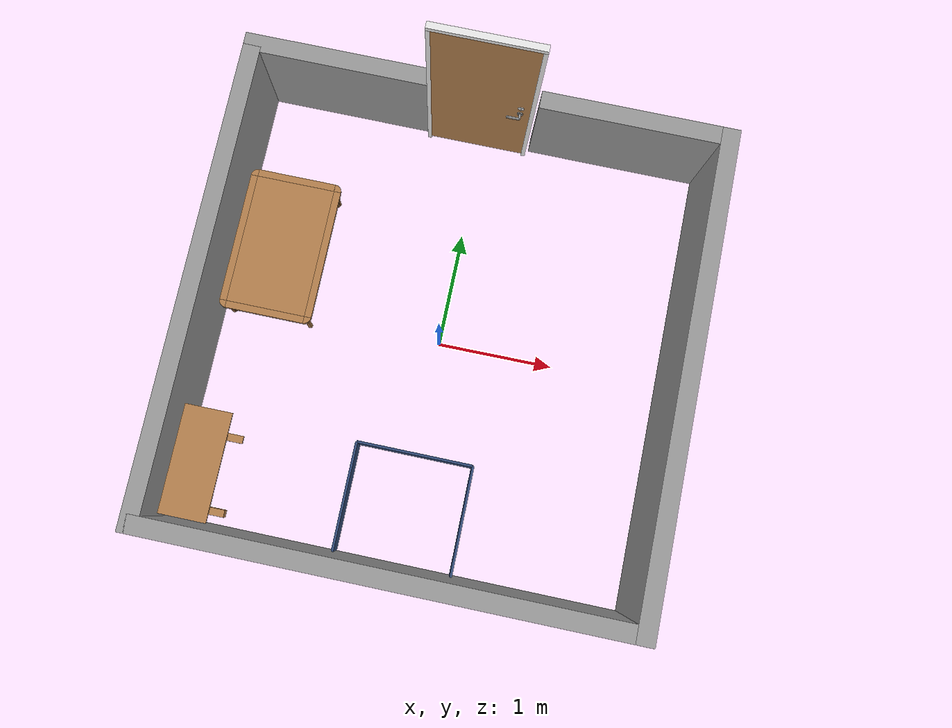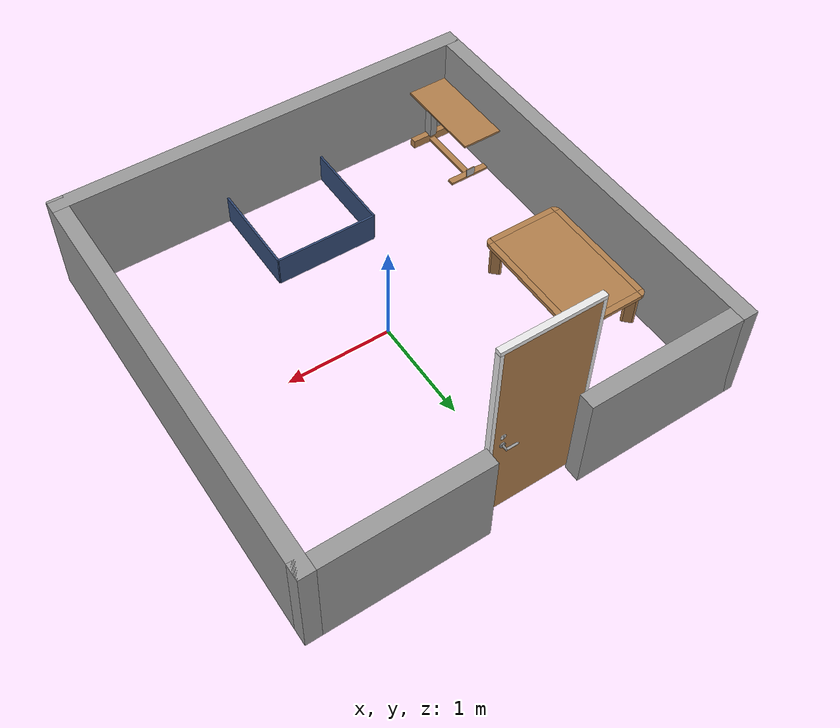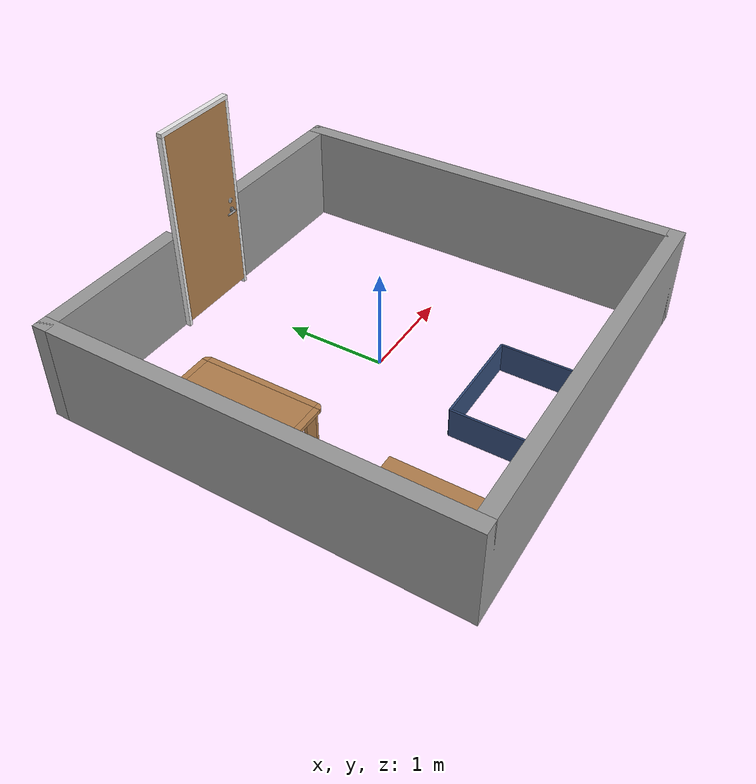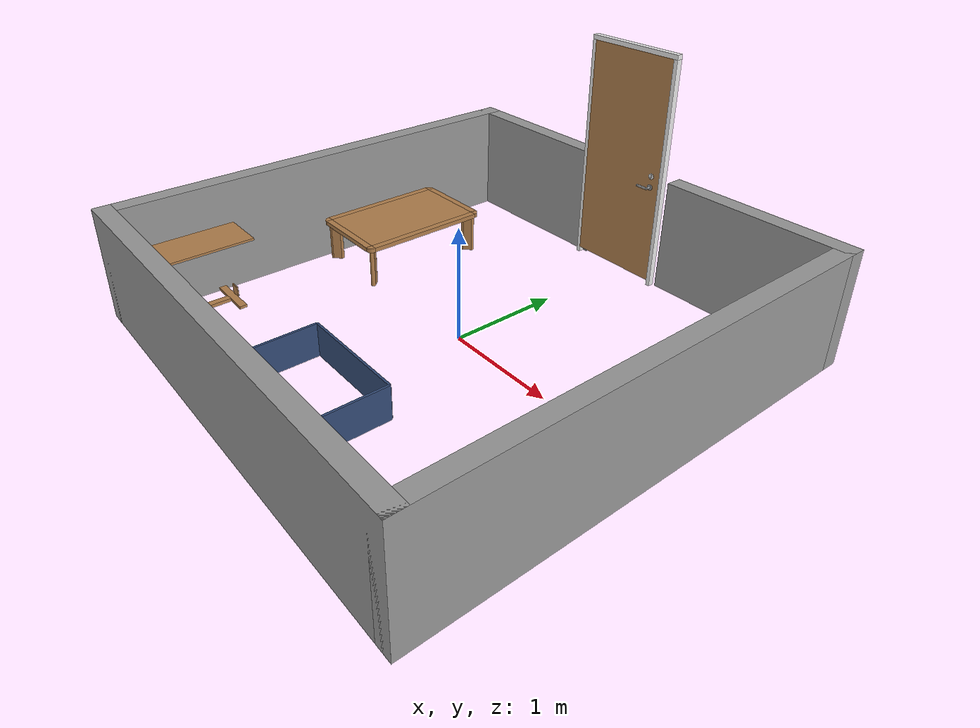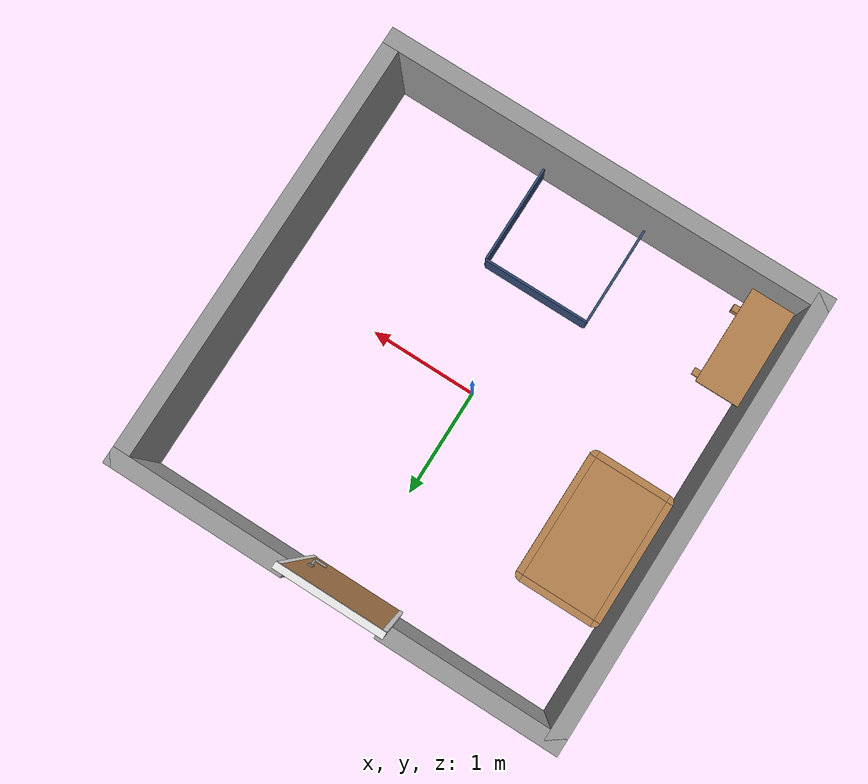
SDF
<sdf version="1.6">
 <world name="default">
  <model name="test_next_object_walls">
   <pose>-3e-06 0 1e-06 0 0.001621 0</pose>
   <link name="Wall_14">
    <collision name="Wall_14_Collision">
     <geometry><box><size>4.15 0.15 1</size></box></geometry>
     <pose>0 0 0.5 0 -0 0</pose>
    </collision>
    <visual name="Wall_14_Visual">
     <pose>0 0 0.5 0 -0 0</pose>
     <geometry><box><size>4.15 0.15 1</size></box></geometry>
     <material>
      <script><uri>file://media/materials/scripts/gazebo.material</uri><name>Gazebo/Grey</name></script>
      <ambient>1 1 1 1</ambient>
     </material>
     <meta><layer>0</layer></meta>
    </visual>
    <pose>-2 0 0 0 -0 -1.5708</pose>
   </link>
   <link name="Wall_16">
    <collision name="Wall_16_Collision">
     <geometry><box><size>4.15 0.15 1</size></box></geometry>
     <pose>0 0 0.5 0 -0 0</pose>
    </collision>
    <visual name="Wall_16_Visual">
     <pose>0 0 0.5 0 -0 0</pose>
     <geometry><box><size>4.15 0.15 1</size></box></geometry>
     <material>
      <script><uri>file://media/materials/scripts/gazebo.material</uri><name>Gazebo/Grey</name></script>
      <ambient>1 1 1 1</ambient>
     </material>
     <meta><layer>0</layer></meta>
    </visual>
    <pose>0 -2 0 0 -0 0</pose>
   </link>
   <link name="Wall_18">
    <collision name="Wall_18_Collision">
     <geometry><box><size>4.15 0.15 1</size></box></geometry>
     <pose>0 0 0.5 0 -0 0</pose>
    </collision>
    <visual name="Wall_18_Visual">
     <pose>0 0 0.5 0 -0 0</pose>
     <geometry><box><size>4.15 0.15 1</size></box></geometry>
     <material>
      <script><uri>file://media/materials/scripts/gazebo.material</uri><name>Gazebo/Grey</name></script>
      <ambient>1 1 1 1</ambient>
     </material>
     <meta><layer>0</layer></meta>
    </visual>
    <pose>2 0 0 0 -0 1.5708</pose>
   </link>
   <link name="Wall_20">
    <collision name="Wall_20_Collision">
     <geometry><box><size>1.65 0.15 1</size></box></geometry>
     <pose>0 0 0.5 0 -0 0</pose>
    </collision>
    <visual name="Wall_20_Visual">
     <pose>0 0 0.5 0 -0 0</pose>
     <geometry><box><size>1.65 0.15 1</size></box></geometry>
     <material>
      <script><uri>file://media/materials/scripts/gazebo.material</uri><name>Gazebo/Grey</name></script>
      <ambient>1 1 1 1</ambient>
     </material>
     <meta><layer>0</layer></meta>
    </visual>
    <pose>-1.25 2 0 0 -0 0</pose>
   </link>
   <link name="Wall_22">
    <collision name="Wall_22_Collision">
     <geometry><box><size>1.65 0.15 1</size></box></geometry>
     <pose>0 0 0.5 0 -0 0</pose>
    </collision>
    <visual name="Wall_22_Visual">
     <pose>0 0 0.5 0 -0 0</pose>
     <geometry><box><size>1.65 0.15 1</size></box></geometry>
     <material>
      <script><uri>file://media/materials/scripts/gazebo.material</uri><name>Gazebo/Grey</name></script>
      <ambient>1 1 1 1</ambient>
     </material>
     <meta><layer>0</layer></meta>
    </visual>
    <pose>1.25 2 0 0 -0 3.14159</pose>
   </link>
   <static>1</static>
  </model>
  <model name="kitchen_lowtable">
   <link name="link">
    <inertial>
     <mass>10</mass>
     <inertia><ixx>1</ixx><ixy>0</ixy><ixz>0</ixz><iyy>1</iyy><iyz>0</iyz><izz>1</izz></inertia>
    </inertial>
    <visual name="center_board">
     <pose>0 0 0.38 0 -0 0</pose>
     <geometry><box><size>0.68 1.13 0.04</size></box></geometry>
     <material>
      <script><uri>model://base_materials/wood/scripts/wood.material</uri><name>base_materials/wood</name></script>
     </material>
    </visual>
    <collision name="collision_center_board">
     <pose>0 0 0.38 0 -0 0</pose>
     <geometry><box><size>0.68 1.13 0.04</size></box></geometry>
    </collision>
    <visual name="front_board">
     <pose>0.37 0 0.38 0 -0 0</pose>
     <geometry><box><size>0.06 1.13 0.04</size></box></geometry>
     <material>
      <script><uri>model://base_materials/wood/scripts/wood.material</uri><name>base_materials/wood</name></script>
     </material>
    </visual>
    <collision name="collision_front_board">
     <pose>0.37 0 0.38 0 -0 0</pose>
     <geometry><box><size>0.06 1.13 0.04</size></box></geometry>
    </collision>
    <visual name="back_board">
     <pose>-0.37 0 0.38 0 -0 0</pose>
     <geometry><box><size>0.06 1.13 0.04</size></box></geometry>
     <material>
      <script><uri>model://base_materials/wood/scripts/wood.material</uri><name>base_materials/wood</name></script>
     </material>
    </visual>
    <collision name="collision_back_board">
     <pose>-0.37 0 0.38 0 -0 0</pose>
     <geometry><box><size>0.06 1.13 0.04</size></box></geometry>
    </collision>
    <visual name="right_board">
     <pose>0 0.595 0.38 0 -0 0</pose>
     <geometry><box><size>0.68 0.06 0.04</size></box></geometry>
     <material>
      <script><uri>model://base_materials/wood/scripts/wood.material</uri><name>base_materials/wood</name></script>
     </material>
    </visual>
    <collision name="collision_right_board">
     <pose>0 0.595 0.38 0 -0 0</pose>
     <geometry><box><size>0.68 0.06 0.04</size></box></geometry>
    </collision>
    <visual name="left_board">
     <pose>0 -0.595 0.38 0 -0 0</pose>
     <geometry><box><size>0.68 0.06 0.04</size></box></geometry>
     <material>
      <script><uri>model://base_materials/wood/scripts/wood.material</uri><name>base_materials/wood</name></script>
     </material>
    </visual>
    <collision name="collision_left_board">
     <pose>0 -0.595 0.38 0 -0 0</pose>
     <geometry><box><size>0.68 0.06 0.04</size></box></geometry>
    </collision>
    <visual name="front_right_corner_board">
     <pose>0.34 0.565 0.38 0 -0 0</pose>
     <geometry><cylinder><radius>0.06</radius><length>0.039</length></cylinder></geometry>
     <material>
      <script><uri>model://base_materials/wood/scripts/wood.material</uri><name>base_materials/wood</name></script>
     </material>
    </visual>
    <collision name="collision_front_right_corner_board">
     <pose>0.34 0.565 0.38 0 -0 0</pose>
     <geometry><cylinder><radius>0.06</radius><length>0.039</length></cylinder></geometry>
    </collision>
    <visual name="front_left_corner_board">
     <pose>0.34 -0.565 0.38 0 -0 0</pose>
     <geometry><cylinder><radius>0.06</radius><length>0.039</length></cylinder></geometry>
     <material>
      <script><uri>model://base_materials/wood/scripts/wood.material</uri><name>base_materials/wood</name></script>
     </material>
    </visual>
    <collision name="collision_front_left_corner_board">
     <pose>0.34 -0.565 0.38 0 -0 0</pose>
     <geometry><cylinder><radius>0.06</radius><length>0.039</length></cylinder></geometry>
    </collision>
    <visual name="front_back_right_corner_board">
     <pose>-0.34 0.565 0.38 0 -0 0</pose>
     <geometry><cylinder><radius>0.06</radius><length>0.039</length></cylinder></geometry>
     <material>
      <script><uri>model://base_materials/wood/scripts/wood.material</uri><name>base_materials/wood</name></script>
     </material>
    </visual>
    <collision name="collision_back_right_corner_board">
     <pose>-0.34 0.565 0.38 0 -0 0</pose>
     <geometry><cylinder><radius>0.06</radius><length>0.039</length></cylinder></geometry>
    </collision>
    <visual name="front_back_left_corner_board">
     <pose>-0.34 -0.565 0.38 0 -0 0</pose>
     <geometry><cylinder><radius>0.06</radius><length>0.039</length></cylinder></geometry>
     <material>
      <script><uri>model://base_materials/wood/scripts/wood.material</uri><name>base_materials/wood</name></script>
     </material>
    </visual>
    <collision name="collision_back_left_corner_board">
     <pose>-0.34 -0.565 0.38 0 -0 0</pose>
     <geometry><cylinder><radius>0.06</radius><length>0.039</length></cylinder></geometry>
    </collision>
    <visual name="front_left_corner_frame1">
     <pose>0.345858 -0.57086 0.18 0 -0 0</pose>
     <geometry><cylinder><radius>0.02</radius><length>0.36</length></cylinder></geometry>
     <material>
      <script><uri>model://base_materials/wood/scripts/wood.material</uri><name>base_materials/wood</name></script>
     </material>
    </visual>
    <collision name="collision_front_left_corner_frame1">
     <pose>0.345858 -0.57086 0.18 0 -0 0</pose>
     <geometry><cylinder><radius>0.02</radius><length>0.36</length></cylinder></geometry>
    </collision>
    <visual name="front_left_corner_frame2">
     <pose>0.317574 -0.54257 0.18 0 -0 0.7854</pose>
     <geometry><box><size>0.04 0.08 0.36</size></box></geometry>
     <material>
      <script><uri>model://base_materials/wood/scripts/wood.material</uri><name>base_materials/wood</name></script>
     </material>
    </visual>
    <collision name="collision_front_left_corner_frame2">
     <pose>0.317574 -0.54257 0.18 0 -0 0.7854</pose>
     <geometry><box><size>0.04 0.08 0.36</size></box></geometry>
    </collision>
    <visual name="front_left_corner_frame3">
     <pose>0.289289 -0.51429 0.18 0 -0 0</pose>
     <geometry><cylinder><radius>0.02</radius><length>0.36</length></cylinder></geometry>
     <material>
      <script><uri>model://base_materials/wood/scripts/wood.material</uri><name>base_materials/wood</name></script>
     </material>
    </visual>
    <collision name="collision_front_left_corner_frame3">
     <pose>0.289289 -0.51429 0.18 0 -0 0</pose>
     <geometry><cylinder><radius>0.02</radius><length>0.36</length></cylinder></geometry>
    </collision>
    <visual name="front_right_corner_frame1">
     <pose>0.345858 0.57086 0.18 0 -0 0</pose>
     <geometry><cylinder><radius>0.02</radius><length>0.36</length></cylinder></geometry>
     <material>
      <script><uri>model://base_materials/wood/scripts/wood.material</uri><name>base_materials/wood</name></script>
     </material>
    </visual>
    <collision name="collision_front_right_corner_frame1">
     <pose>0.345858 0.57086 0.18 0 -0 0</pose>
     <geometry><cylinder><radius>0.02</radius><length>0.36</length></cylinder></geometry>
    </collision>
    <visual name="front_right_corner_frame2">
     <pose>0.317574 0.54257 0.18 0 0 -0.7854</pose>
     <geometry><box><size>0.04 0.08 0.36</size></box></geometry>
     <material>
      <script><uri>model://base_materials/wood/scripts/wood.material</uri><name>base_materials/wood</name></script>
     </material>
    </visual>
    <collision name="collision_front_right_corner_frame2">
     <pose>0.317574 0.54257 0.18 0 0 -0.7854</pose>
     <geometry><box><size>0.04 0.08 0.36</size></box></geometry>
    </collision>
    <visual name="front_right_corner_frame3">
     <pose>0.289289 0.51429 0.18 0 -0 0</pose>
     <geometry><cylinder><radius>0.02</radius><length>0.36</length></cylinder></geometry>
     <material>
      <script><uri>model://base_materials/wood/scripts/wood.material</uri><name>base_materials/wood</name></script>
     </material>
    </visual>
    <collision name="collision_front_right_corner_frame3">
     <pose>0.289289 0.51429 0.18 0 -0 0</pose>
     <geometry><cylinder><radius>0.02</radius><length>0.36</length></cylinder></geometry>
    </collision>
    <visual name="back_left_corner_frame1">
     <pose>-0.345858 -0.57086 0.18 0 -0 0</pose>
     <geometry><cylinder><radius>0.02</radius><length>0.36</length></cylinder></geometry>
     <material>
      <script><uri>model://base_materials/wood/scripts/wood.material</uri><name>base_materials/wood</name></script>
     </material>
    </visual>
    <collision name="collision_back_left_corner_frame1">
     <pose>-0.345858 -0.57086 0.18 0 -0 0</pose>
     <geometry><cylinder><radius>0.02</radius><length>0.36</length></cylinder></geometry>
    </collision>
    <visual name="back_left_corner_frame2">
     <pose>-0.317574 -0.54257 0.18 0 0 -0.7854</pose>
     <geometry><box><size>0.04 0.08 0.36</size></box></geometry>
     <material>
      <script><uri>model://base_materials/wood/scripts/wood.material</uri><name>base_materials/wood</name></script>
     </material>
    </visual>
    <collision name="collision_back_left_corner_frame2">
     <pose>-0.317574 -0.54257 0.18 0 0 -0.7854</pose>
     <geometry><box><size>0.04 0.08 0.36</size></box></geometry>
    </collision>
    <visual name="back_left_corner_frame3">
     <pose>-0.289289 -0.51429 0.18 0 -0 0</pose>
     <geometry><cylinder><radius>0.02</radius><length>0.36</length></cylinder></geometry>
     <material>
      <script><uri>model://base_materials/wood/scripts/wood.material</uri><name>base_materials/wood</name></script>
     </material>
    </visual>
    <collision name="collision_back_left_corner_frame3">
     <pose>-0.289289 -0.51429 0.18 0 -0 0</pose>
     <geometry><cylinder><radius>0.02</radius><length>0.36</length></cylinder></geometry>
    </collision>
    <visual name="back_right_corner_frame1">
     <pose>-0.345858 0.57086 0.18 0 -0 0</pose>
     <geometry><cylinder><radius>0.02</radius><length>0.36</length></cylinder></geometry>
     <material>
      <script><uri>model://base_materials/wood/scripts/wood.material</uri><name>base_materials/wood</name></script>
     </material>
    </visual>
    <collision name="collision_back_right_corner_frame1">
     <pose>-0.345858 0.57086 0.18 0 -0 0</pose>
     <geometry><cylinder><radius>0.02</radius><length>0.36</length></cylinder></geometry>
    </collision>
    <visual name="back_right_corner_frame2">
     <pose>-0.317574 0.54257 0.18 0 -0 0.7854</pose>
     <geometry><box><size>0.04 0.08 0.36</size></box></geometry>
     <material>
      <script><uri>model://base_materials/wood/scripts/wood.material</uri><name>base_materials/wood</name></script>
     </material>
    </visual>
    <collision name="collision_back_right_corner_frame2">
     <pose>-0.317574 0.54257 0.18 0 -0 0.7854</pose>
     <geometry><box><size>0.04 0.08 0.36</size></box></geometry>
    </collision>
    <visual name="back_right_corner_frame3">
     <pose>-0.289289 0.51429 0.18 0 -0 0</pose>
     <geometry><cylinder><radius>0.02</radius><length>0.36</length></cylinder></geometry>
     <material>
      <script><uri>model://base_materials/wood/scripts/wood.material</uri><name>base_materials/wood</name></script>
     </material>
    </visual>
    <collision name="collision_back_right_corner_frame3">
     <pose>-0.289289 0.51429 0.18 0 -0 0</pose>
     <geometry><cylinder><radius>0.02</radius><length>0.36</length></cylinder></geometry>
    </collision>
    <velocity_decay><linear>0</linear><angular>0</angular></velocity_decay>
   </link>
   <static>1</static>
   <pose>-1.5 0.5 0 0 -0 0</pose>
  </model>
  <model name="bed_table">
   <link name="link">
    <inertial>
     <pose>0 0.449 0.001 0 -0 0</pose>
     <mass>10</mass>
     <inertia><ixx>1</ixx><ixy>0</ixy><ixz>0</ixz><iyy>1</iyy><iyz>0</iyz><izz>1</izz></inertia>
    </inertial>
    <visual name="top_board">
     <pose>0 0.449 0.625 0 -0 0</pose>
     <geometry><box><size>0.398 0.898 0.02</size></box></geometry>
     <material>
      <script><uri>model://base_materials/wood/scripts/wood.material</uri><name>base_materials/wood</name></script>
     </material>
    </visual>
    <collision name="collision_top_board">
     <pose>0 0.449 0.625 0 -0 0</pose>
     <geometry><box><size>0.398 0.898 0.02</size></box></geometry>
    </collision>
    <visual name="right_pole">
     <pose>0 0.817 0.3515 0 -0 0</pose>
     <geometry><box><size>0.072 0.094 0.527</size></box></geometry>
     <material>
      <script><uri>model://base_materials/color/scripts</uri><name>hsr_color/grey</name></script>
     </material>
    </visual>
    <collision name="collision_right_pole">
     <pose>0 0.817 0.3515 0 -0 0</pose>
     <geometry><box><size>0.072 0.094 0.527</size></box></geometry>
    </collision>
    <visual name="right_bottom_pole">
     <pose>0 0.8225 0.044 0 -0 0</pose>
     <geometry><box><size>0.42 0.063 0.088</size></box></geometry>
     <material>
      <script><uri>model://base_materials/wood/scripts/wood.material</uri><name>base_materials/wood</name></script>
     </material>
    </visual>
    <collision name="collision_right_bottom_pole">
     <pose>0 0.8225 0.044 0 -0 0</pose>
     <geometry><box><size>0.42 0.063 0.088</size></box></geometry>
    </collision>
    <visual name="bottom_center_pole">
     <pose>0 0.502 0.03 0 -0 0</pose>
     <geometry><box><size>0.06 0.578 0.03</size></box></geometry>
     <material>
      <script><uri>model://base_materials/wood/scripts/wood.material</uri><name>base_materials/wood</name></script>
     </material>
    </visual>
    <collision name="collision_bottom_center_pole">
     <pose>0 0.502 0.03 0 -0 0</pose>
     <geometry><box><size>0.06 0.578 0.03</size></box></geometry>
    </collision>
    <visual name="left_bottom_pole">
     <pose>0 0.18 0.0325 0 -0 0</pose>
     <geometry><box><size>0.418 0.066 0.025</size></box></geometry>
     <material>
      <script><uri>model://base_materials/wood/scripts/wood.material</uri><name>base_materials/wood</name></script>
     </material>
    </visual>
    <collision name="collision_left_bottom_pole">
     <pose>0 0.18 0.0325 0 -0 0</pose>
     <geometry><box><size>0.418 0.066 0.025</size></box></geometry>
    </collision>
    <visual name="marker_0010">
     <pose>0 0.14 0.093 0 -0 0</pose>
     <geometry><box><size>0.09 0.001 0.09</size></box></geometry>
     <material>
      <script>
       <uri>model://bed_table/marker/0010/scripts</uri>
       <uri>model://bed_table/marker/0010/textures</uri>
       <name>Marker/0010</name>
      </script>
     </material>
    </visual>
    <collision name="collision_marker_0010">
     <pose>0 0.14 0.093 0 -0 0</pose>
     <geometry><box><size>0.09 0.001 0.09</size></box></geometry>
    </collision>
    <visual name="marker_0010_back_plate">
     <pose>0 0.146 0.093 0 -0 0</pose>
     <geometry><box><size>0.09 0.01 0.09</size></box></geometry>
     <material>
      <script><uri>model://base_materials/wood/scripts/wood.material</uri><name>base_materials/wood</name></script>
     </material>
    </visual>
    <collision name="collision_marker_0010_back_plate">
     <pose>0 0.146 0.093 0 -0 0</pose>
     <geometry><box><size>0.09 0.01 0.09</size></box></geometry>
    </collision>
    <velocity_decay><linear>0</linear><angular>0</angular></velocity_decay>
   </link>
   <static>1</static>
   <pose>-1.7 -1 0 0 -0 3.14159</pose>
  </model>
  <model name="door_55_900_2090">
   <link name="link">
    <pose>0 0.45 0 0 -0 0</pose>
    <inertial>
     <mass>50</mass>
     <inertia><ixx>1</ixx><ixy>0</ixy><ixz>0</ixz><iyy>1</iyy><iyz>0</iyz><izz>1</izz></inertia>
    </inertial>
    <visual name="door">
     <pose>0 0 1.05 0 -0 0</pose>
     <geometry><box><size>0.055 0.83 2</size></box></geometry>
     <material>
      <script><uri>model://base_materials/wood/scripts/wood.material</uri><name>base_materials/wood</name></script>
     </material>
    </visual>
    <collision name="collision_door">
     <pose>0 0 1.05 0 -0 0</pose>
     <geometry><box><size>0.055 0.83 2</size></box></geometry>
    </collision>
    <visual name="right_frame">
     <pose>0 0.4325 1.025 0 -0 0</pose>
     <geometry><box><size>0.055 0.035 2.05</size></box></geometry>
     <material>
      <script><uri>model://base_materials/color/scripts</uri><name>hsr_color/white</name></script>
     </material>
    </visual>
    <collision name="collision_right_frame">
     <pose>0 0.4325 1.025 0 -0 0</pose>
     <geometry><box><size>0.055 0.035 2.05</size></box></geometry>
    </collision>
    <visual name="left_frame">
     <pose>0 -0.4325 1.025 0 -0 0</pose>
     <geometry><box><size>0.055 0.035 2.05</size></box></geometry>
     <material>
      <script><uri>model://base_materials/color/scripts</uri><name>hsr_color/white</name></script>
     </material>
    </visual>
    <collision name="collision_left_frame">
     <pose>0 -0.4325 1.025 0 -0 0</pose>
     <geometry><box><size>0.055 0.035 2.05</size></box></geometry>
    </collision>
    <visual name="top_frame">
     <pose>0 0 2.07 0 -0 0</pose>
     <geometry><box><size>0.055 0.9 0.04</size></box></geometry>
     <material>
      <script><uri>model://base_materials/color/scripts</uri><name>hsr_color/white</name></script>
     </material>
    </visual>
    <collision name="collision_top_frame">
     <pose>0 0 2.07 0 -0 0</pose>
     <geometry><box><size>0.055 0.9 0.04</size></box></geometry>
    </collision>
    <visual name="handle_front">
     <pose>0.0775 0.285 0.93 1.5708 -0 0</pose>
     <geometry><cylinder><radius>0.01</radius><length>0.1</length></cylinder></geometry>
     <material>
      <script><uri>model://base_materials/color/scripts</uri><name>hsr_color/grey</name></script>
     </material>
    </visual>
    <collision name="collision_handle_front">
     <pose>0.0775 0.285 0.93 1.5708 -0 0</pose>
     <geometry><cylinder><radius>0.01</radius><length>0.1</length></cylinder></geometry>
    </collision>
    <visual name="handle_back">
     <pose>-0.0775 0.285 0.93 1.5708 -0 0</pose>
     <geometry><cylinder><radius>0.01</radius><length>0.1</length></cylinder></geometry>
     <material>
      <script><uri>model://base_materials/color/scripts</uri><name>hsr_color/grey</name></script>
     </material>
    </visual>
    <collision name="collision_handle_back">
     <pose>-0.0775 0.285 0.93 1.5708 -0 0</pose>
     <geometry><cylinder><radius>0.01</radius><length>0.1</length></cylinder></geometry>
    </collision>
    <visual name="handle_center1">
     <pose>0 0.335 0.93 3.14159 1.57079 3.14159</pose>
     <geometry><cylinder><radius>0.01</radius><length>0.155</length></cylinder></geometry>
     <material>
      <script><uri>model://base_materials/color/scripts</uri><name>hsr_color/grey</name></script>
     </material>
    </visual>
    <collision name="collision_center1">
     <pose>0 0.335 0.93 3.14159 1.57079 3.14159</pose>
     <geometry><cylinder><radius>0.01</radius><length>0.155</length></cylinder></geometry>
    </collision>
    <visual name="handle_center2">
     <pose>0 0.335 0.93 3.14159 1.57079 3.14159</pose>
     <geometry><cylinder><radius>0.025</radius><length>0.075</length></cylinder></geometry>
     <material>
      <script><uri>model://base_materials/color/scripts</uri><name>hsr_color/grey</name></script>
     </material>
    </visual>
    <collision name="collision_center1">
     <pose>0 0.335 0.93 3.14159 1.57079 3.14159</pose>
     <geometry><cylinder><radius>0.025</radius><length>0.075</length></cylinder></geometry>
    </collision>
    <visual name="handle_front_right_corner">
     <pose>0.0775 0.335 0.93 0 -0 0</pose>
     <geometry><sphere><radius>0.01</radius></sphere></geometry>
     <material>
      <script><uri>model://base_materials/color/scripts</uri><name>hsr_color/grey</name></script>
     </material>
    </visual>
    <collision name="collision_handle_front_right_corner">
     <pose>0.0775 0.335 0.93 0 -0 0</pose>
     <geometry><sphere><radius>0.01</radius></sphere></geometry>
    </collision>
    <visual name="handle_front_left_corner">
     <pose>0.0775 0.235 0.93 0 -0 0</pose>
     <geometry><sphere><radius>0.01</radius></sphere></geometry>
     <material>
      <script><uri>model://base_materials/color/scripts</uri><name>hsr_color/grey</name></script>
     </material>
    </visual>
    <collision name="collision_handle_front_left_corner">
     <pose>0.0775 0.235 0.93 0 -0 0</pose>
     <geometry><sphere><radius>0.01</radius></sphere></geometry>
    </collision>
    <visual name="handle_back_right_corner">
     <pose>-0.0775 0.335 0.93 0 -0 0</pose>
     <geometry><sphere><radius>0.01</radius></sphere></geometry>
     <material>
      <script><uri>model://base_materials/color/scripts</uri><name>hsr_color/grey</name></script>
     </material>
    </visual>
    <collision name="collision_handle_back_right_corner">
     <pose>-0.0775 0.335 0.93 0 -0 0</pose>
     <geometry><sphere><radius>0.01</radius></sphere></geometry>
    </collision>
    <visual name="handle_back_left_corner">
     <pose>-0.0775 0.235 0.93 0 -0 0</pose>
     <geometry><sphere><radius>0.01</radius></sphere></geometry>
     <material>
      <script><uri>model://base_materials/color/scripts</uri><name>hsr_color/white</name></script>
     </material>
    </visual>
    <collision name="collision_handle_back_left_corner">
     <pose>-0.0775 0.235 0.93 0 -0 0</pose>
     <geometry><sphere><radius>0.01</radius></sphere></geometry>
    </collision>
    <visual name="handle_lock1">
     <pose>0 0.335 1.03 0 -0 0</pose>
     <geometry><box><size>0.075 0.005 0.04</size></box></geometry>
     <material>
      <script><uri>model://base_materials/color/scripts</uri><name>hsr_color/white</name></script>
     </material>
    </visual>
    <collision name="collision_handle_lock1">
     <pose>0 0.335 1.03 0 -0 0</pose>
     <geometry><box><size>0.075 0.005 0.04</size></box></geometry>
    </collision>
    <visual name="handle_lock2">
     <pose>0 0.335 1.03 3.14159 1.57079 3.14159</pose>
     <geometry><cylinder><radius>0.025</radius><length>0.065</length></cylinder></geometry>
     <material>
      <script><uri>model://base_materials/color/scripts</uri><name>hsr_color/white</name></script>
     </material>
    </visual>
    <collision name="collision_handle_lock1">
     <pose>0 0.335 1.03 3.14159 1.57079 3.14159</pose>
     <geometry><cylinder><radius>0.025</radius><length>0.065</length></cylinder></geometry>
    </collision>
    <velocity_decay><linear>0</linear><angular>0</angular></velocity_decay>
   </link>
   <static>1</static>
   <pose>-0.5 1.9 0 0 0 -1.57</pose>
  </model>
  <model name="low_wall">
   <link name="link">
    <inertial>
     <mass>50</mass>
     <inertia><ixx>1</ixx><ixy>0</ixy><ixz>0</ixz><iyy>1</iyy><iyz>0</iyz><izz>1</izz></inertia>
    </inertial>
    <visual name="wall">
     <pose>0 0 0.15 0 -0 0</pose>
     <geometry><box><size>0.02 1 0.3</size></box></geometry>
     <material>
      <ambient>0.392 0.584 0.929 1</ambient>
      <diffuse>0.196 0.292 0.4645 1</diffuse>
      <specular>0 0 0 1</specular>
     </material>
    </visual>
    <collision name="collision_wall">
     <pose>0 0 0.15 0 -0 0</pose>
     <geometry><box><size>0.02 1 0.3</size></box></geometry>
    </collision>
    <velocity_decay><linear>0</linear><angular>0</angular></velocity_decay>
   </link>
   <static>1</static>
   <pose>0.5 -1.5 0 0 -0 0</pose>
  </model>
  <model name="low_wall_0">
   <link name="link">
    <inertial>
     <mass>50</mass>
     <inertia><ixx>1</ixx><ixy>0</ixy><ixz>0</ixz><iyy>1</iyy><iyz>0</iyz><izz>1</izz></inertia>
    </inertial>
    <visual name="wall">
     <pose>0 0 0.15 0 -0 0</pose>
     <geometry><box><size>0.02 1 0.3</size></box></geometry>
     <material>
      <ambient>0.392 0.584 0.929 1</ambient>
      <diffuse>0.196 0.292 0.4645 1</diffuse>
      <specular>0 0 0 1</specular>
     </material>
    </visual>
    <collision name="collision_wall">
     <pose>0 0 0.15 0 -0 0</pose>
     <geometry><box><size>0.02 1 0.3</size></box></geometry>
    </collision>
    <velocity_decay><linear>0</linear><angular>0</angular></velocity_decay>
   </link>
   <static>1</static>
   <pose>-0.5 -1.5 0 0 -0 0</pose>
  </model>
  <model name="low_wall_1">
   <link name="link">
    <inertial>
     <mass>50</mass>
     <inertia><ixx>1</ixx><ixy>0</ixy><ixz>0</ixz><iyy>1</iyy><iyz>0</iyz><izz>1</izz></inertia>
    </inertial>
    <visual name="wall">
     <pose>0 0 0.15 0 -0 0</pose>
     <geometry><box><size>0.02 1 0.3</size></box></geometry>
     <material>
      <ambient>0.392 0.584 0.929 1</ambient>
      <diffuse>0.196 0.292 0.4645 1</diffuse>
      <specular>0 0 0 1</specular>
     </material>
    </visual>
    <collision name="collision_wall">
     <pose>0 0 0.15 0 -0 0</pose>
     <geometry><box><size>0.02 1 0.3</size></box></geometry>
    </collision>
    <velocity_decay><linear>0</linear><angular>0</angular></velocity_decay>
   </link>
   <static>1</static>
   <pose>0 -1 0 0 -0 1.57</pose>
  </model>
 </world>
</sdf>
